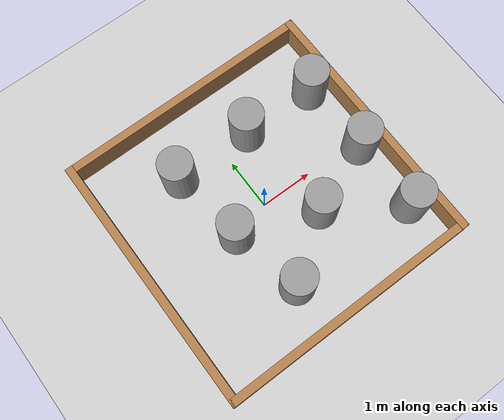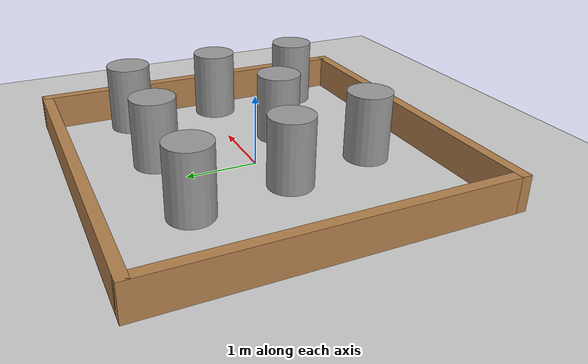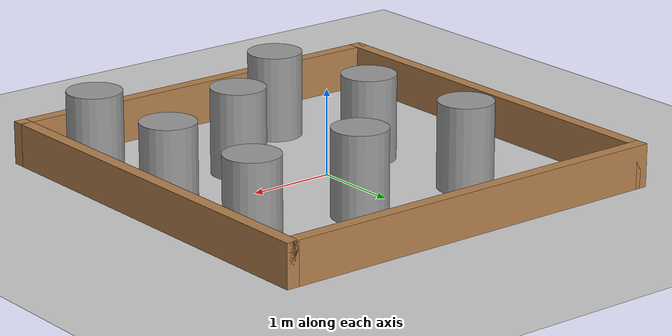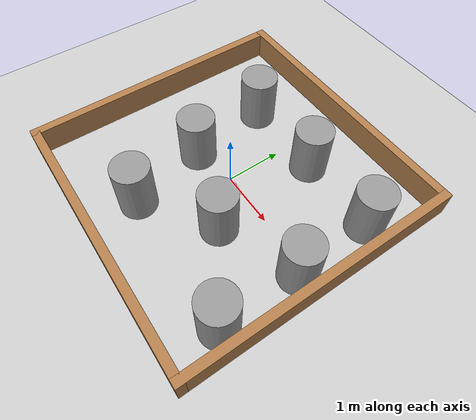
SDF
<sdf version="1.7">
 <world name="default">
  <light name="sun" type="directional">
   <pose>0 0 10 0 -0 0</pose>
   <diffuse>0.8 0.8 0.8 1</diffuse>
   <specular>0.2 0.2 0.2 1</specular>
   <attenuation>
    <range>1000</range>
    <constant>0.9</constant>
    <linear>0.01</linear>
    <quadratic>0.001</quadratic>
   </attenuation>
   <direction>-0.5 0.1 -0.9</direction>
   <spot><inner_angle>0</inner_angle><outer_angle>0</outer_angle><falloff>0</falloff></spot>
  </light>
  <model name="ground_plane">
   <static>1</static>
   <link name="link">
    <collision name="collision">
     <geometry><plane><normal>0 0 1</normal><size>100 100</size></plane></geometry>
     <surface><friction><ode><mu>100</mu><mu2>50</mu2></ode></friction></surface>
    </collision>
    <visual name="visual">
     <cast_shadows>0</cast_shadows>
     <geometry><plane><normal>0 0 1</normal><size>100 100</size></plane></geometry>
     <material>
      <script><uri>file://media/materials/scripts/gazebo.material</uri><name>Gazebo/Grey</name></script>
     </material>
    </visual>
   </link>
  </model>
  <gravity>0 0 -9.8</gravity>
  <magnetic_field>6e-06 2.3e-05 -4.2e-05</magnetic_field>
  <atmosphere type="adiabatic"/>
  <physics type="ode">
   <max_step_size>0.001</max_step_size>
   <real_time_factor>1</real_time_factor>
   <real_time_update_rate>1000</real_time_update_rate>
  </physics>
  <scene><ambient>0.4 0.4 0.4 1</ambient><background>0.7 0.7 0.7 1</background><shadows>1</shadows></scene>
  <audio><device>default</device></audio>
  <spherical_coordinates>
   <surface_model>EARTH_WGS84</surface_model>
   <latitude_deg>0</latitude_deg>
   <longitude_deg>0</longitude_deg>
   <elevation>0</elevation>
   <heading_deg>0</heading_deg>
  </spherical_coordinates>
  <model name="turtlebot3_square">
   <link name="Wall_1">
    <collision name="Wall_1_Collision">
     <geometry><box><size>5 0.15 0.5</size></box></geometry>
     <pose>0 0 0.25 0 -0 0</pose>
    </collision>
    <visual name="Wall_1_Visual">
     <pose>0 0 0.25 0 -0 0</pose>
     <geometry><box><size>5 0.15 0.5</size></box></geometry>
     <material>
      <script><uri>file://media/materials/scripts/gazebo.material</uri><name>Gazebo/Wood</name></script>
      <ambient>1 1 1 1</ambient>
     </material>
    </visual>
    <pose>-2.425 0 0 0 -0 1.5708</pose>
   </link>
   <link name="Wall_2">
    <collision name="Wall_2_Collision">
     <geometry><box><size>5 0.15 0.5</size></box></geometry>
     <pose>0 0 0.25 0 -0 0</pose>
    </collision>
    <visual name="Wall_2_Visual">
     <pose>0 0 0.25 0 -0 0</pose>
     <geometry><box><size>5 0.15 0.5</size></box></geometry>
     <material>
      <script><uri>file://media/materials/scripts/gazebo.material</uri><name>Gazebo/Wood</name></script>
      <ambient>1 1 1 1</ambient>
     </material>
    </visual>
    <pose>0 2.425 0 0 -0 0</pose>
   </link>
   <link name="Wall_3">
    <collision name="Wall_3_Collision">
     <geometry><box><size>5 0.15 0.5</size></box></geometry>
     <pose>0 0 0.25 0 -0 0</pose>
    </collision>
    <visual name="Wall_3_Visual">
     <pose>0 0 0.25 0 -0 0</pose>
     <geometry><box><size>5 0.15 0.5</size></box></geometry>
     <material>
      <script><uri>file://media/materials/scripts/gazebo.material</uri><name>Gazebo/Wood</name></script>
      <ambient>1 1 1 1</ambient>
     </material>
    </visual>
    <pose>2.425 0 0 0 0 -1.5708</pose>
   </link>
   <link name="Wall_4">
    <collision name="Wall_4_Collision">
     <geometry><box><size>5 0.15 0.5</size></box></geometry>
     <pose>0 0 0.25 0 -0 0</pose>
    </collision>
    <visual name="Wall_4_Visual">
     <pose>0 0 0.25 0 -0 0</pose>
     <geometry><box><size>5 0.15 0.5</size></box></geometry>
     <material>
      <script><uri>file://media/materials/scripts/gazebo.material</uri><name>Gazebo/Wood</name></script>
      <ambient>1 1 1 1</ambient>
     </material>
    </visual>
    <pose>0 -2.425 0 0 -0 3.14159</pose>
   </link>
   <static>1</static>
  </model>
  <model name="unit_cylinder">
   <pose>0.555001 1.26028 0.499991 0 -0 0</pose>
   <link name="link">
    <inertial>
     <mass>1</mass>
     <inertia><ixx>0.145833</ixx><ixy>0</ixy><ixz>0</ixz><iyy>0.145833</iyy><iyz>0</iyz><izz>0.125</izz></inertia>
    </inertial>
    <collision name="collision">
     <geometry><cylinder><radius>0.318536</radius><length>1</length></cylinder></geometry>
    </collision>
    <visual name="visual">
     <geometry><cylinder><radius>0.318536</radius><length>1</length></cylinder></geometry>
     <material>
      <script><name>Gazebo/Grey</name><uri>file://media/materials/scripts/gazebo.material</uri></script>
     </material>
    </visual>
   </link>
  </model>
  <model name="unit_cylinder_clone">
   <pose>1.9776 1.24042 0.499998 -0 -0 -0</pose>
   <link name="link">
    <inertial>
     <mass>1</mass>
     <inertia><ixx>0.145833</ixx><ixy>0</ixy><ixz>0</ixz><iyy>0.145833</iyy><iyz>0</iyz><izz>0.125</izz></inertia>
    </inertial>
    <collision name="collision">
     <geometry><cylinder><radius>0.318536</radius><length>1</length></cylinder></geometry>
    </collision>
    <visual name="visual">
     <geometry><cylinder><radius>0.318536</radius><length>1</length></cylinder></geometry>
     <material>
      <script><name>Gazebo/Grey</name><uri>file://media/materials/scripts/gazebo.material</uri></script>
     </material>
    </visual>
   </link>
  </model>
  <model name="unit_cylinder_clone_0">
   <pose>2.03146 -1.5682 0.499991 0 1e-06 2e-06</pose>
   <link name="link">
    <inertial>
     <mass>1</mass>
     <inertia><ixx>0.145833</ixx><ixy>0</ixy><ixz>0</ixz><iyy>0.145833</iyy><iyz>0</iyz><izz>0.125</izz></inertia>
    </inertial>
    <collision name="collision">
     <geometry><cylinder><radius>0.318536</radius><length>1</length></cylinder></geometry>
    </collision>
    <visual name="visual">
     <geometry><cylinder><radius>0.318536</radius><length>1</length></cylinder></geometry>
     <material>
      <script><name>Gazebo/Grey</name><uri>file://media/materials/scripts/gazebo.material</uri></script>
     </material>
    </visual>
   </link>
  </model>
  <model name="unit_cylinder_clone_1">
   <pose>-0.445837 -1.52436 0.499998 0 0 -1e-06</pose>
   <link name="link">
    <inertial>
     <mass>1</mass>
     <inertia><ixx>0.145833</ixx><ixy>0</ixy><ixz>0</ixz><iyy>0.145833</iyy><iyz>0</iyz><izz>0.125</izz></inertia>
    </inertial>
    <collision name="collision">
     <geometry><cylinder><radius>0.318536</radius><length>1</length></cylinder></geometry>
    </collision>
    <visual name="visual">
     <geometry><cylinder><radius>0.318536</radius><length>1</length></cylinder></geometry>
     <material>
      <script><name>Gazebo/Grey</name><uri>file://media/materials/scripts/gazebo.material</uri></script>
     </material>
    </visual>
   </link>
  </model>
  <model name="unit_cylinder_clone_2">
   <pose>0.705695 -0.693637 0.499994 -2e-06 2e-06 -0</pose>
   <link name="link">
    <inertial>
     <mass>1</mass>
     <inertia><ixx>0.145833</ixx><ixy>0</ixy><ixz>0</ixz><iyy>0.145833</iyy><iyz>0</iyz><izz>0.125</izz></inertia>
    </inertial>
    <collision name="collision">
     <geometry><cylinder><radius>0.318536</radius><length>1</length></cylinder></geometry>
    </collision>
    <visual name="visual">
     <geometry><cylinder><radius>0.318536</radius><length>1</length></cylinder></geometry>
     <material>
      <script><name>Gazebo/Grey</name><uri>file://media/materials/scripts/gazebo.material</uri></script>
     </material>
    </visual>
   </link>
  </model>
  <model name="unit_cylinder_clone_3">
   <pose>-0.742749 -0.176422 0.499993 0 -0 0</pose>
   <link name="link">
    <inertial>
     <mass>1</mass>
     <inertia><ixx>0.145833</ixx><ixy>0</ixy><ixz>0</ixz><iyy>0.145833</iyy><iyz>0</iyz><izz>0.125</izz></inertia>
    </inertial>
    <collision name="collision">
     <geometry><cylinder><radius>0.318536</radius><length>1</length></cylinder></geometry>
    </collision>
    <visual name="visual">
     <geometry><cylinder><radius>0.318536</radius><length>1</length></cylinder></geometry>
     <material>
      <script><name>Gazebo/Grey</name><uri>file://media/materials/scripts/gazebo.material</uri></script>
     </material>
    </visual>
   </link>
  </model>
  <model name="unit_cylinder_clone_4">
   <pose>2.03146 -0.170943 0.499993 0 -0 1e-06</pose>
   <link name="link">
    <inertial>
     <mass>1</mass>
     <inertia><ixx>0.145833</ixx><ixy>0</ixy><ixz>0</ixz><iyy>0.145833</iyy><iyz>0</iyz><izz>0.125</izz></inertia>
    </inertial>
    <collision name="collision">
     <geometry><cylinder><radius>0.318536</radius><length>1</length></cylinder></geometry>
    </collision>
    <visual name="visual">
     <geometry><cylinder><radius>0.318536</radius><length>1</length></cylinder></geometry>
     <material>
      <script><name>Gazebo/Grey</name><uri>file://media/materials/scripts/gazebo.material</uri></script>
     </material>
    </visual>
   </link>
  </model>
  <model name="unit_cylinder_clone_5">
   <pose>-0.940052 1.2587 0.499998 -0 -0 -0</pose>
   <link name="link">
    <inertial>
     <mass>1</mass>
     <inertia><ixx>0.145833</ixx><ixy>0</ixy><ixz>0</ixz><iyy>0.145833</iyy><iyz>0</iyz><izz>0.125</izz></inertia>
    </inertial>
    <collision name="collision">
     <geometry><cylinder><radius>0.318536</radius><length>1</length></cylinder></geometry>
    </collision>
    <visual name="visual">
     <geometry><cylinder><radius>0.318536</radius><length>1</length></cylinder></geometry>
     <material>
      <script><name>Gazebo/Grey</name><uri>file://media/materials/scripts/gazebo.material</uri></script>
     </material>
    </visual>
   </link>
  </model>
 </world>
</sdf>
